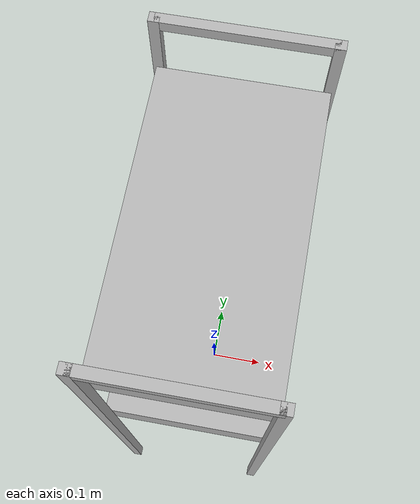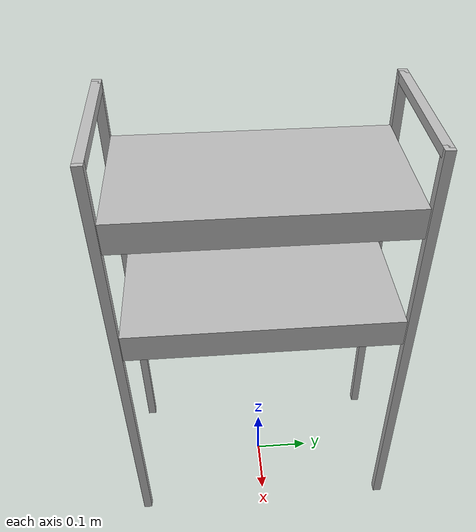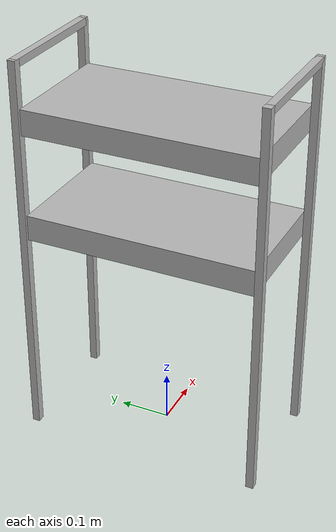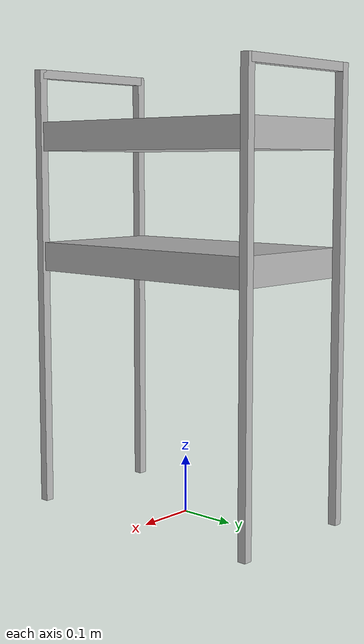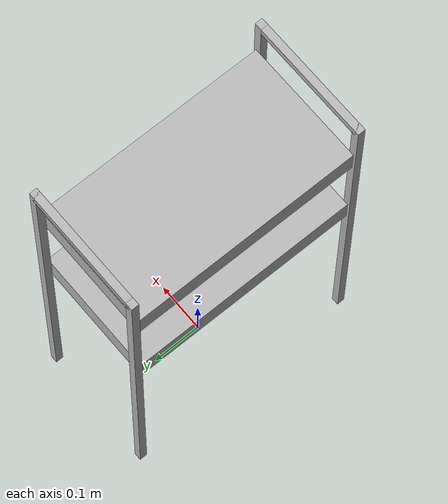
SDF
<?xml version="1.0"?>
<sdf version="1.7">
  <model name="rack/rack">
    <link name="1_link">
      <collision name="1_col">
        <geometry>
          <box>
            <size>0.015 0.015 0.77</size>
          </box>
        </geometry>
      </collision>
      <visual name="1_vis">
        <geometry>
          <box>
            <size>0.015 0.015 0.77</size>
          </box>
        </geometry>
      </visual>
      <pose>0.12 -0.2325 0.385 0 0 0</pose>
    </link>
    <link name="1_1_link">
      <collision name="1_1_col">
        <geometry>
          <box>
            <size>0.015 0.015 0.77</size>
          </box>
        </geometry>
      </collision>
      <visual name="1_1_vis">
        <geometry>
          <box>
            <size>0.015 0.015 0.77</size>
          </box>
        </geometry>
      </visual>
      <pose>-0.12 -0.2325 0.385 0 0 0</pose>
    </link>
    <link name="1_2_link">
      <collision name="1_2_col">
        <geometry>
          <box>
            <size>0.24 0.015 0.015</size>
          </box>
        </geometry>
      </collision>
      <visual name="1_2_vis">
        <geometry>
          <box>
            <size>0.24 0.015 0.015</size>
          </box>
        </geometry>
      </visual>
      <pose>0 -0.2325 0.7625 0 0 0</pose>
    </link>
    <link name="2_link">
      <collision name="2_col">
        <geometry>
          <box>
            <size>0.015 0.015 0.77</size>
          </box>
        </geometry>
      </collision>
      <visual name="2_vis">
        <geometry>
          <box>
            <size>0.015 0.015 0.77</size>
          </box>
        </geometry>
      </visual>
      <pose>0.12 0.2325 0.385 0 0 0</pose>
    </link>
    <link name="2_2_link">
      <collision name="2_2_col">
        <geometry>
          <box>
            <size>0.015 0.015 0.77</size>
          </box>
        </geometry>
      </collision>
      <visual name="2_2_vis">
        <geometry>
          <box>
            <size>0.015 0.015 0.77</size>
          </box>
        </geometry>
      </visual>
      <pose>-0.12 0.2325 0.385 0 0 0</pose>
    </link>
    <link name="2_3_link">
      <collision name="2_3_col">
        <geometry>
          <box>
            <size>0.24 0.015 0.015</size>
          </box>
        </geometry>
      </collision>
      <visual name="2_3_vis">
        <geometry>
          <box>
            <size>0.24 0.015 0.015</size>
          </box>
        </geometry>
      </visual>
      <pose>0 0.2325 0.7625 0 0 0</pose>
    </link>
    <link name="6_link">
      <collision name="6_col">
        <geometry>
          <box>
            <size>0.245 0.45 0.05</size>
          </box>
        </geometry>
      </collision>
      <visual name="6_vis">
        <geometry>
          <box>
            <size>0.245 0.45 0.05</size>
          </box>
        </geometry>
      </visual>
      <pose>0.0 0.0 0.445 0 0 0</pose>
    </link>
    <link name="7_link">
      <collision name="7_col">
        <geometry>
          <box>
            <size>0.245 0.45 0.05</size>
          </box>
        </geometry>
      </collision>
      <visual name="7_vis">
        <geometry>
          <box>
            <size>0.245 0.45 0.05</size>
          </box>
        </geometry>
      </visual>
      <pose>0.0 0.0 0.655 0 0 0</pose>
    </link>
    <link name="in_front_of_link">
      <virtual_volume name="in_front_of">
        <geometry>
          <box>
            <size>0.2 0.15 0.01</size>
          </box>
        </geometry>
        <pose>0.63 0.05 0.005 0 0 0</pose>
      </virtual_volume>
    </link>
    <static>true</static>
  </model>
</sdf>
